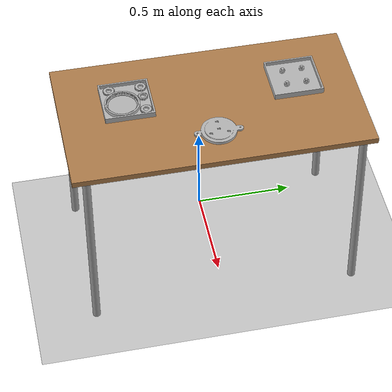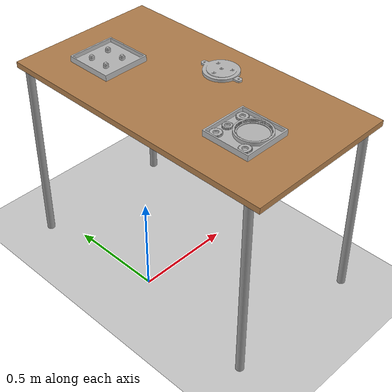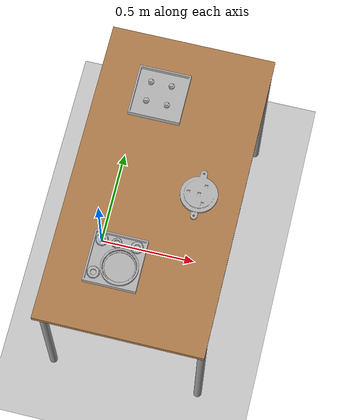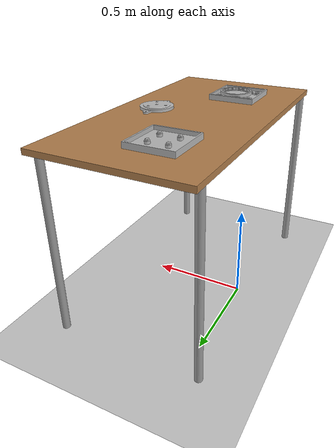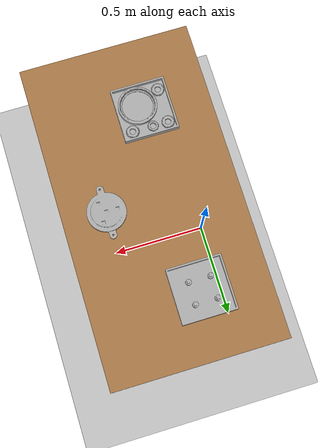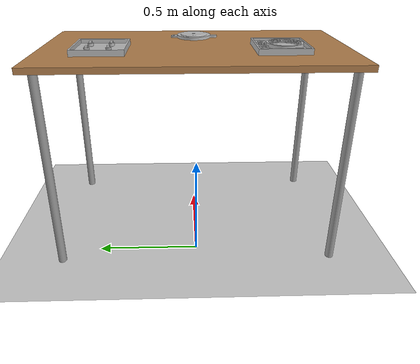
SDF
<?xml version="1.0" ?>
<sdf version="1.4">
  <world name="default">
    <!-- A global light source -->
    <include>
      <uri>model://sun</uri>
    </include>
    <!-- A ground plane -->
    <include>
      <uri>model://ground_plane</uri>
    </include>
    <include>
      <name>stairs</name>
      <uri>model://challenge_table</uri>
      <pose>0.3 0 -0.015 0 0 1.57</pose>
    </include>
    <include>
      <name>tray1</name>
      <uri>model://challenge_tray</uri>
      <pose>0 0.15 1 -1.57 0 0</pose>
    </include>
    <include>
      <name>tray2</name>
      <uri>model://challenge_tray</uri>
      <pose>0 -0.7 1 -1.57 0 0</pose>
    </include>
    <include>
      <name>base</name>
      <uri>model://challenge_base</uri>
      <pose>0.5 0 1.03 3.14 0 -1.57</pose>
    </include>
    <include>
      <name>pivot1</name>
      <uri>model://challenge_pivot</uri>
      <pose>0.25 0.4 1.011 0 0 0</pose>
    </include>
    <include>
      <name>pivot2</name>
      <uri>model://challenge_pivot</uri>
      <pose>0.25 0.5 1.011 0 0 0</pose>
    </include>
    <include>
      <name>pivot3</name>
      <uri>model://challenge_pivot</uri>
      <pose>0.15 0.5 1.011 0 0 0</pose>
    </include>
    <include>
      <name>pivot4</name>
      <uri>model://challenge_pivot</uri>
      <pose>0.15 0.4 1.011 0 0 0</pose>
    </include>
    <include>
      <name>crown</name>
      <uri>model://challenge_crown</uri>
      <pose>0.23 -0.43 1.0235 3.1415 0 0</pose>
    </include>
    <include>
      <name>gear1</name>
      <uri>model://challenge_satellite_gear1</uri>
      <pose>0.285 -0.32 1.0155 0 0 0</pose>
    </include>
    <include>
      <name>gear2</name>
      <uri>model://challenge_satellite_gear1</uri>
      <pose>0.12 -0.32 1.0155 0 0 0</pose>
    </include>
    <include>
      <name>gear3</name>
      <uri>model://challenge_satellite_gear1</uri>
      <pose>0.12 -0.48 1.0155 0 0 0</pose>
    </include>
    <include>
      <name>sun_wheel</name>
      <uri>model://challenge_sun_wheel</uri>
      <pose>0.19 -0.32 1.0155 0 0 0</pose>
    </include>
  </world>
</sdf>

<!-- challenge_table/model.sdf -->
<sdf version="1.4">
  <model name="challenge_table">
    <static>true</static>
    <link name="link">
      <collision name="surface">
        <pose>0 0 1.0 0 0 0</pose>
        <geometry>
          <box>
            <size>1.5 0.8 0.03</size>
          </box>
        </geometry>
        <surface>
          <friction>
            <ode>
              <mu>0.6</mu>
              <mu2>0.6</mu2>
            </ode>
          </friction>
        </surface>
      </collision>
      <visual name="visual1">
        <pose>0 0 1.0 0 0 0</pose>
        <geometry>
          <box>
            <size>1.5 0.8 0.03</size>
          </box>
        </geometry>
        <material>
          <script>
            <uri>file://media/materials/scripts/gazebo.material</uri>
            <name>Gazebo/Wood</name>
          </script>
        </material>
      </visual>
      <collision name="front_left_leg">
        <pose>0.68 0.38 0.5 0 0 0</pose>
        <geometry>
          <cylinder>
            <radius>0.02</radius>
            <length>1.0</length>
          </cylinder>
        </geometry>
      </collision>
      <visual name="front_left_leg">
        <pose>0.68 0.38 0.5 0 0 0</pose>
        <geometry>
          <cylinder>
            <radius>0.02</radius>
            <length>1.0</length>
          </cylinder>
        </geometry>
        <material>
          <script>
            <uri>file://media/materials/scripts/gazebo.material</uri>
            <name>Gazebo/Grey</name>
          </script>
        </material>
      </visual>
      <collision name="front_right_leg">
        <pose>0.68 -0.38 0.5 0 0 0</pose>
        <geometry>
          <cylinder>
            <radius>0.02</radius>
            <length>1.0</length>
          </cylinder>
        </geometry>
      </collision>
      <visual name="front_right_leg">
        <pose>0.68 -0.38 0.5 0 0 0</pose>
        <geometry>
          <cylinder>
            <radius>0.02</radius>
            <length>1.0</length>
          </cylinder>
        </geometry>
        <material>
          <script>
            <uri>file://media/materials/scripts/gazebo.material</uri>
            <name>Gazebo/Grey</name>
          </script>
        </material>
      </visual>
      <collision name="back_right_leg">
        <pose>-0.68 -0.38 0.5 0 0 0</pose>
        <geometry>
          <cylinder>
            <radius>0.02</radius>
            <length>1.0</length>
          </cylinder>
        </geometry>
      </collision>
      <visual name="back_right_leg">
        <pose>-0.68 -0.38 0.5 0 0 0</pose>
        <geometry>
          <cylinder>
            <radius>0.02</radius>
            <length>1.0</length>
          </cylinder>
        </geometry>
        <material>
          <script>
            <uri>file://media/materials/scripts/gazebo.material</uri>
            <name>Gazebo/Grey</name>
          </script>
        </material>
      </visual>
      <collision name="back_left_leg">
        <pose>-0.68 0.38 0.5 0 0 0</pose>
        <geometry>
          <cylinder>
            <radius>0.02</radius>
            <length>1.0</length>
          </cylinder>
        </geometry>
      </collision>
      <visual name="back_left_leg">
        <pose>-0.68 0.38 0.5 0 0 0</pose>
        <geometry>
          <cylinder>
            <radius>0.02</radius>
            <length>1.0</length>
          </cylinder>
        </geometry>
        <material>
          <script>
            <uri>file://media/materials/scripts/gazebo.material</uri>
            <name>Gazebo/Grey</name>
          </script>
        </material>
      </visual>
    </link>
  </model>
</sdf>

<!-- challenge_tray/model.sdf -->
<sdf version="1.4">
    <model name="challenge_tray">
    <static>true</static>
    <link name="link">
        <pose>0 0 0 0 0 0</pose>
        <collision name="collision">
            <geometry>
                <mesh>
                    <uri>model://challenge_tray/mesh/challenge_tray.stl</uri>
                    <scale>0.001 0.001 0.001</scale>
                </mesh>
            </geometry>
        </collision>
        <visual name="visual">
            <geometry>
                <mesh>
                    <uri>model://challenge_tray/mesh/challenge_tray.stl</uri>
                    <scale>0.001 0.001 0.001</scale>
                </mesh>
            </geometry>
        </visual>
        </link>
    </model>
</sdf>

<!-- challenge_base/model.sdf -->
<sdf version="1.4">
    <model name="challenge_base">
    <static>true</static>
    <link name="link">
        <pose>0 0 0 0 0 0</pose>
        <collision name="collision">
            <geometry>
                <mesh>
                    <uri>model://challenge_base/mesh/challenge_base.stl</uri>
                    <scale>0.001 0.001 0.001</scale>
                </mesh>
            </geometry>
        </collision>
        <visual name="visual">
            <geometry>
                <mesh>
                    <uri>model://challenge_base/mesh/challenge_base.stl</uri>
                    <scale>0.001 0.001 0.001</scale>
                </mesh>
            </geometry>
        </visual>
        </link>
    </model>
</sdf>

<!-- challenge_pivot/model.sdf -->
<sdf version="1.4">
    <model name="challenge_pivot">
    <static>false</static>
    <link name="link">
        <pose>0 0 0 0 0 0</pose>
        <collision name="collision">
            <geometry>
                <mesh>
                    <uri>model://challenge_pivot/mesh/challenge_pivot.stl</uri>
                    <scale>0.001 0.001 0.001</scale>
                </mesh>
            </geometry>
        </collision>
        <visual name="visual">
            <geometry>
                <mesh>
                    <uri>model://challenge_pivot/mesh/challenge_pivot.stl</uri>
                    <scale>0.001 0.001 0.001</scale>
                </mesh>
            </geometry>
        </visual>
        </link>
    </model>
</sdf>

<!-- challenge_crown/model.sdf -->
<sdf version="1.4">
    <model name="challenge_crown">
    <static>false</static>
    <link name="link">
        <pose>0 0 0 0 0 0</pose>
        <collision name="collision">
            <geometry>
                <mesh>
                    <uri>model://challenge_crown/mesh/challenge_crown.stl</uri>
                    <scale>0.001 0.001 0.001</scale>
                </mesh>
            </geometry>
        </collision>
        <visual name="visual">
            <geometry>
                <mesh>
                    <uri>model://challenge_crown/mesh/challenge_crown.stl</uri>
                    <scale>0.001 0.001 0.001</scale>
                </mesh>
            </geometry>
        </visual>
        </link>
    </model>
</sdf>

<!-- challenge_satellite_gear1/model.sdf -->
<sdf version="1.4">
    <model name="challenge_satellite_gear1">
    <static>false</static>
    <link name="link">
        <pose>0 0 0 0 0 0</pose>
        <collision name="collision">
            <geometry>
                <mesh>
                    <uri>model://challenge_satellite_gear1/mesh/challenge_satellite_gear1.stl</uri>
                    <scale>0.001 0.001 0.001</scale>
                </mesh>
            </geometry>
        </collision>
        <visual name="visual">
            <geometry>
                <mesh>
                    <uri>model://challenge_satellite_gear1/mesh/challenge_satellite_gear1.stl</uri>
                    <scale>0.001 0.001 0.001</scale>
                </mesh>
            </geometry>
        </visual>
        </link>
    </model>
</sdf>

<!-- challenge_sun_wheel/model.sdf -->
<sdf version="1.4">
    <model name="challenge_sun_wheel">
    <static>false</static>
    <link name="link">
        <pose>0 0 0 0 0 0</pose>
        <collision name="collision">
            <geometry>
                <mesh>
                    <uri>model://challenge_sun_wheel/mesh/challenge_sun_wheel.stl</uri>
                    <scale>0.001 0.001 0.001</scale>
                </mesh>
            </geometry>
        </collision>
        <visual name="visual">
            <geometry>
                <mesh>
                    <uri>model://challenge_sun_wheel/mesh/challenge_sun_wheel.stl</uri>
                    <scale>0.001 0.001 0.001</scale>
                </mesh>
            </geometry>
        </visual>
        </link>
    </model>
</sdf>
